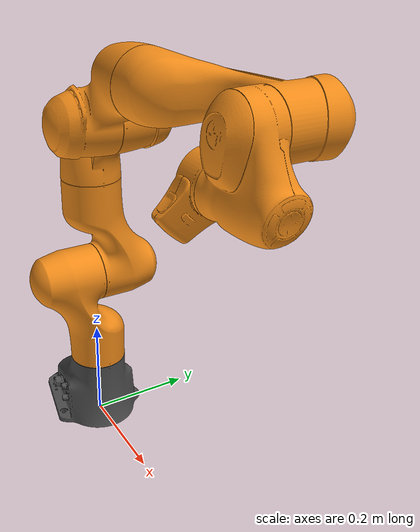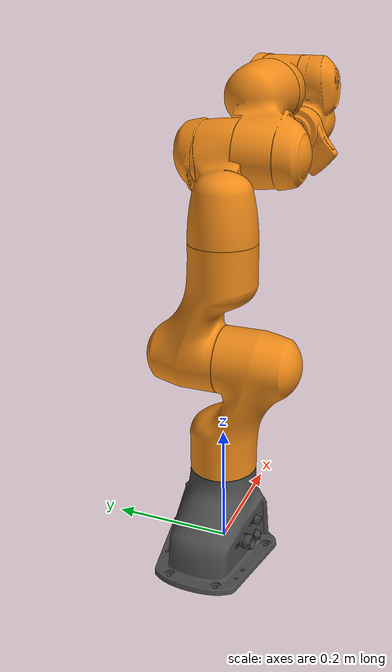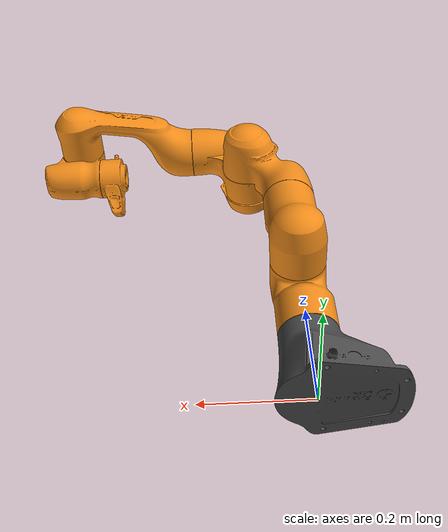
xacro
<?xml version="1.0"?>
<robot name="panda" xmlns:xacro="http://www.ros.org/wiki/xacro">

    <xacro:arg name="gazebo" default="true" />

    <link name="world" />

    <!-- Fix To World -->
    <joint name="panda_link0_to_world" type="fixed">
        <parent link="world" />
        <child link="panda_link0" />
    </joint>

    <!-- Arm Links -->
    <link name="panda_link0">
        <visual name="panda_link0_visual">
            <geometry>
                <mesh filename="package://robot_description/meshes/visual/link0.dae" />
            </geometry>
        </visual>
        <collision name="panda_link0_collision">
            <geometry>
                <mesh filename="package://robot_description/meshes/collision/link0.stl" />
            </geometry>
        </collision>
        <xacro:if value="$(arg gazebo)">
            <inertial>
                <origin xyz="-0.025566 -2.87883e-05 0.057332" rpy="0 0 0" />
                <mass value="2.814271300104062" />
                <inertia
                    ixx="0.0075390636364814695"
                    iyy="0.010508017427382959"
                    izz="0.009864933638708275"
                    ixy="-1.5053124574783335e-05"
                    ixz="-0.0012144328835738973"
                    iyz="1.0434803501032979e-05" />
            </inertial>
        </xacro:if>
    </link>

    <link name="panda_link1">
        <visual name="panda_link1_visual">
            <geometry>
                <mesh filename="package://robot_description/meshes/visual/link1.dae" />
            </geometry>
        </visual>
        <collision name="panda_link1_collision">
            <geometry>
                <mesh filename="package://robot_description/meshes/collision/link1.stl" />
            </geometry>
        </collision>
        <xacro:if value="$(arg gazebo)">
            <inertial>
                <origin xyz="-3.72212e-09 -0.0324958 -0.0675818" rpy="0 0 0" />
                <mass value="2.6433170427227215" />
                <inertia
                    ixx="0.017405076982879724"
                    iyy="0.015352077935781732"
                    izz="0.005987891663073857"
                    ixy="-8.687986369621078e-09"
                    ixz="-1.6277819062920423e-08"
                    iyz="0.004510855959102245" />
            </inertial>
        </xacro:if>
    </link>

    <link name="panda_link2">
        <visual name="panda_link2_visual">
            <geometry>
                <mesh filename="package://robot_description/meshes/visual/link2.dae" />
            </geometry>
        </visual>
        <collision name="panda_link2_collision">
            <geometry>
                <mesh filename="package://robot_description/meshes/collision/link2.stl" />
            </geometry>
        </collision>
        <xacro:if value="$(arg gazebo)">
            <inertial>
                <origin xyz="3.17833e-07 -0.06861 0.0322285" rpy="0 0 0" />
                <mass value="2.6652755331661186" />
                <inertia
                    ixx="0.01778694005635383"
                    iyy="0.006044133867952844"
                    izz="0.01571095500455695"
                    ixy="8.70635625879119e-08"
                    ixz="3.752072058394008e-08"
                    iyz="-0.004599490295490376" />
            </inertial>
        </xacro:if>
    </link>

    <link name="panda_link3">
        <visual name="panda_link3_visual">
            <geometry>
                <mesh filename="package://robot_description/meshes/visual/link3.dae" />
            </geometry>
        </visual>
        <collision name="panda_link3_collision">
            <geometry>
                <mesh filename="package://robot_description/meshes/collision/link3.stl" />
            </geometry>
        </collision>
        <xacro:if value="$(arg gazebo)">
            <inertial>
                <origin xyz="0.0469893 0.0316374 -0.031704" rpy="0 0 0" />
                <mass value="2.3293714829045733" />
                <inertia
                    ixx="0.0075496764161139766"
                    iyy="0.009680676080191398"
                    izz="0.007944557422008086"
                    ixy="-0.0024320464513492225"
                    ixz="-0.003250815048103007"
                    iyz="-0.0021316282421730694" />
            </inertial>
        </xacro:if>
    </link>

    <link name="panda_link4">
        <visual name="panda_link4_visual">
            <geometry>
                <mesh filename="package://robot_description/meshes/visual/link4.dae" />
            </geometry>
        </visual>
        <collision name="panda_link4_collision">
            <geometry>
                <mesh filename="package://robot_description/meshes/collision/link4.stl" />
            </geometry>
        </collision>
        <xacro:if value="$(arg gazebo)">
            <inertial>
                <origin xyz="-0.0360505 0.0337069 0.0319019" rpy="0 0 0" />
                <mass value="2.3104763646281508" />
                <inertia
                    ixx="0.007764568814864828"
                    iyy="0.008015776929980149"
                    izz="0.009955882308071066"
                    ixy="0.003371475204045935"
                    ixz="-0.002343621113168248"
                    iyz="0.0022917526161470624" />
            </inertial>
        </xacro:if>
    </link>

    <link name="panda_link5">
        <visual name="panda_link5_visual">
            <geometry>
                <mesh filename="package://robot_description/meshes/visual/link5.dae" />
            </geometry>
        </visual>
        <collision name="panda_link5_collision">
            <geometry>
                <mesh filename="package://robot_description/meshes/collision/link5.stl" />
            </geometry>
        </collision>
        <xacro:if value="$(arg gazebo)">
            <inertial>
                <origin xyz="-6.12525e-06 0.0610427 -0.104176" rpy="0 0 0" />
                <mass value="2.6226426154892004" />
                <inertia
                    ixx="0.029070538014399377"
                    iyy="0.027638529986528795"
                    izz="0.004251111234400737"
                    ixy="6.208738268725568e-07"
                    ixz="-1.0059151925023392e-05"
                    iyz="-0.007424306477850814" />
            </inertial>
        </xacro:if>
    </link>

    <link name="panda_link6">
        <visual name="panda_link6_visual">
            <geometry>
                <mesh filename="package://robot_description/meshes/visual/link6.dae" />
            </geometry>
        </visual>
        <collision name="panda_link6_collision">
            <geometry>
                <mesh filename="package://robot_description/meshes/collision/link6.stl" />
            </geometry>
        </collision>
        <xacro:if value="$(arg gazebo)">
            <inertial>
                <origin value="0.051051 0.00910797 0.0106343" rpy="0 0 0" />
                <mass value="1.5025804886626795" />
                <inertia
                    ixx="0.002940555801469018"
                    iyy="0.00392105201248677"
                    izz="0.0054115603870960195"
                    ixy="-0.00042391108351381507"
                    ixz="0.000610007735338717"
                    iyz="0.00012647545430836214" />
            </inertial>
        </xacro:if>
    </link>

    <link name="panda_link7">
        <visual name="panda_link7_visual">
            <geometry>
                <mesh filename="package://robot_description/meshes/visual/link7.dae" />
            </geometry>
        </visual>
        <collision name="panda_link7_collision">
            <geometry>
                <mesh filename="package://robot_description/meshes/collision/link7.stl" />
            </geometry>
        </collision>
        <xacro:if value="$(arg gazebo)">
            <inertial>
                <origin xyz="0.0109695 0.0107965 0.0650412" rpy="0 0 0" />
                <mass value="0.5237668134788256" />
                <inertia
                    ixx="0.0008621467959726535"
                    iyy="0.0008613100184801048"
                    izz="0.0006961139396618219"
                    ixy="-0.00011871071570425467"
                    ixz="3.866602604509339e-05"
                    iyz="-9.057841649422724e-05" />
            </inertial>
        </xacro:if>
    </link>

    <!-- Arm Joints -->
    <joint name="panda_joint1" type="revolute">
        <origin xyz="0 0 0.333" rpy="0 0 0" />
        <parent link="panda_link0" />
        <child link="panda_link1" />
        <axis xyz="0 0 1" />
        <limit effort="87" lower="-2.897246558310587" upper="2.897246558310587" velocity="2.617993877991494" />
        <xacro:if value="$(arg gazebo)">
            <dynamics damping="21.75" friction="3.48" />
        </xacro:if>
    </joint>

    <joint name="panda_joint2" type="revolute">
        <origin xyz="0 0 0" rpy="-1.570796326794897 0 0" />
        <parent link="panda_link1" />
        <child link="panda_link2" />
        <axis xyz="0 0 1" />
        <limit effort="87" lower="-1.762782544514273" upper="1.762782544514273" velocity="2.617993877991494" />
        <xacro:if value="$(arg gazebo)">
            <dynamics damping="21.75" friction="3.48" />
        </xacro:if>
    </joint>

    <joint name="panda_joint3" type="revolute">
        <origin xyz="0 -0.316 0" rpy="1.570796326794897 0 0" />
        <parent link="panda_link2" />
        <child link="panda_link3" />
        <axis xyz="0 0 1" />
        <limit effort="87" lower="-2.897246558310587" upper="2.897246558310587" velocity="2.617993877991494" />
        <xacro:if value="$(arg gazebo)">
            <dynamics damping="21.75" friction="3.48" />
        </xacro:if>
    </joint>

    <joint name="panda_joint4" type="revolute">
        <origin xyz="0.0825 0 0" rpy="1.570796326794897 0 0" />
        <parent link="panda_link3" />
        <child link="panda_link4" />
        <axis xyz="0 0 1" />
        <limit effort="87" lower="-3.07177948351002" upper="-0.06981317007977318" velocity="2.617993877991494" />
        <xacro:if value="$(arg gazebo)">
            <dynamics damping="21.75" friction="3.48" />
        </xacro:if>
    </joint>

    <joint name="panda_joint5" type="revolute">
        <origin xyz="-0.0825 0.384 0" rpy="-1.570796326794897 0 0" />
        <parent link="panda_link4" />
        <child link="panda_link5" />
        <axis xyz="0 0 1" />
        <limit effort="12" lower="-2.897246558310587" upper="2.897246558310587" velocity="3.141592653589793" />
        <xacro:if value="$(arg gazebo)">
            <dynamics damping="3.0" friction="0.48" />
        </xacro:if>
    </joint>

    <joint name="panda_joint6" type="revolute">
        <origin xyz="0 0 0" rpy="1.570796326794897 0 0" />
        <parent link="panda_link5" />
        <child link="panda_link6" />
        <axis xyz="0 0 1" />
        <limit effort="12" lower="-0.0174532925199433" upper="3.752457891787809" velocity="3.141592653589793" />
        <xacro:if value="$(arg gazebo)">
            <dynamics damping="3.0" friction="0.48" />
        </xacro:if>
    </joint>

    <joint name="panda_joint7" type="revolute">
        <origin xyz="0.088 0 0" rpy="1.570796326794897 0 0" />
        <parent link="panda_link6" />
        <child link="panda_link7" />
        <axis xyz="0 0 1" />
        <limit effort="12" lower="-2.897246558310587" upper="2.897246558310587" velocity="3.141592653589793" />
        <xacro:if value="$(arg gazebo)">
            <dynamics damping="3.0" friction="0.48" />
        </xacro:if>
    </joint>

    <!-- Gazebo property -->
    <xacro:if value="$(arg gazebo)">
        <gazebo reference="base_link">
            <mu1>1.05</mu1>
            <mu2>1.05</mu2>
            <material>Gazebo/Black</material>
        </gazebo>

        <gazebo reference="panda_link0">
            <mu1>1.05</mu1>
            <mu2>1.05</mu2>
            <material>Gazebo/DarkGrey</material>
        </gazebo>

        <gazebo reference="panda_link1">
            <mu1>1.05</mu1>
            <mu2>1.05</mu2>
            <material>Gazebo/Orange</material>
        </gazebo>

        <gazebo reference="panda_link2">
            <mu1>1.05</mu1>
            <mu2>1.05</mu2>
            <material>Gazebo/Orange</material>
        </gazebo>

        <gazebo reference="panda_link3">
            <mu1>1.05</mu1>
            <mu2>1.05</mu2>
            <material>Gazebo/Orange</material>
        </gazebo>

        <gazebo reference="panda_link4">
            <mu1>1.05</mu1>
            <mu2>1.05</mu2>
            <material>Gazebo/Orange</material>
        </gazebo>

        <gazebo reference="panda_link5">
            <mu1>1.05</mu1>
            <mu2>1.05</mu2>
            <material>Gazebo/Orange</material>
        </gazebo>

        <gazebo reference="panda_link6">
            <mu1>1.05</mu1>
            <mu2>1.05</mu2>
            <material>Gazebo/Orange</material>
        </gazebo>

        <gazebo reference="panda_link7">
            <mu1>1.05</mu1>
            <mu2>1.05</mu2>
            <material>Gazebo/Orange</material>
        </gazebo>
    </xacro:if>

</robot>
